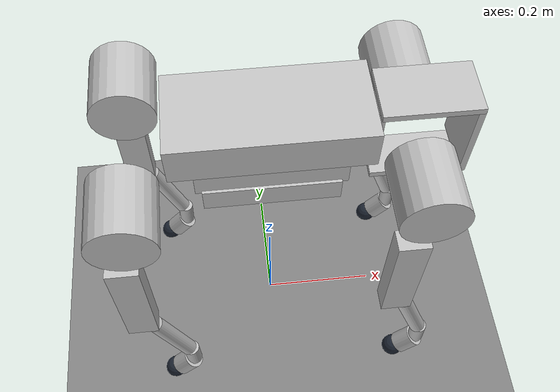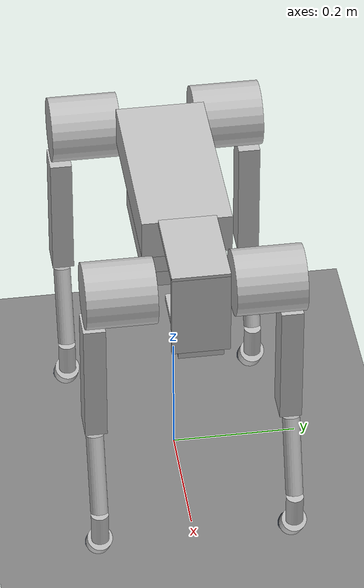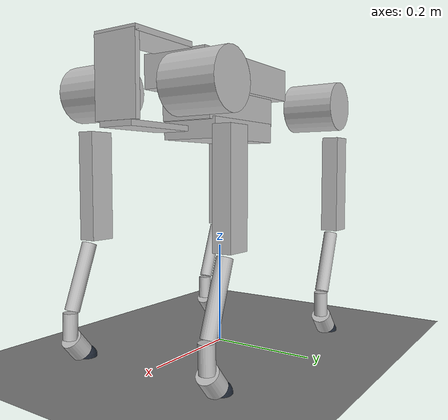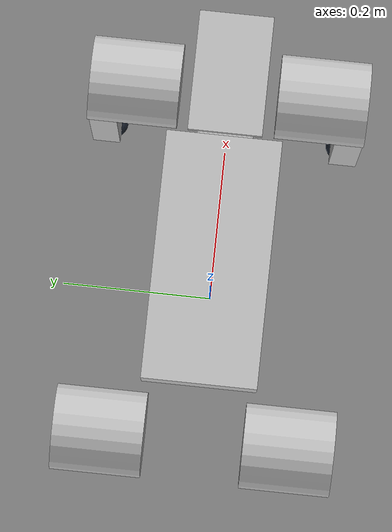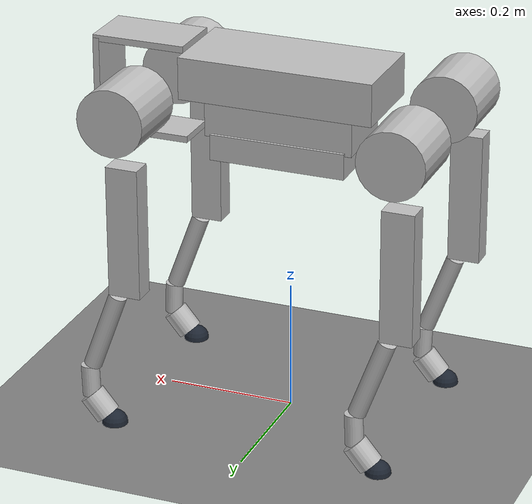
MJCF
<mujoco model="robot">
  <option iterations="50" timestep="0.001" solver="PGS" gravity="0 0 -9.81" />
  <compiler angle="radian" eulerseq="zyx" autolimits="true" />

  <default>
    <joint limited="true" damping="0.01" armature="0.01" frictionloss="0.01" />
    <geom condim="4" contype="1" conaffinity="15" friction="0.9 0.2 0.2" solref="0.001 2" />
    <motor ctrllimited="true" />
    <equality solref="0.001 2" />
  </default>

  <worldbody>
    <light directional="true" diffuse="0.4 0.4 0.4" specular="0.1 0.1 0.1" pos="0 0 5.0" dir="0 0 -1" castshadow="false" />
    <light directional="true" diffuse="0.6 0.6 0.6" specular="0.2 0.2 0.2" pos="0 0 4" dir="0 0 -1" />
    <geom name="ground" type="plane" pos="0 0 0" size="100 100 0.001" quat="1 0 0 0" condim="3" conaffinity="15" />
    <camera name="fixed" pos="0 -3.0 1.05858" xyaxes="1 0 0 0 0 1" />
    <camera name="track" mode="trackcom" pos="0 -3.0 1.05858" xyaxes="1 0 0 0 0 1" />

    <body name="root" pos="0 0 0.55858" quat="1 0 0 0">
      <freejoint name="root" />
      <site name="imu" size="0.01" pos="0 0 0" />

      <geom type="box" size="0.15 0.07 0.0325" pos="0 0 -0.02" rgba="0.75 0.75 0.75 1" contype="1" conaffinity="0" group="1" />
      <geom type="box" size="0.15 0.07 0.0325" pos="0 0 -0.02" rgba="0.75 0.75 0.75 1" />
      <geom type="box" size="0.115 0.055 0.03" pos="0 0 -0.08" rgba="0.75 0.75 0.75 1" contype="1" conaffinity="0" group="1" />
      <geom type="box" size="0.115 0.055 0.03" pos="0 0 -0.08" rgba="0.75 0.75 0.75 1" />
      <geom type="box" size="0.105 0.06 0.02" pos="0 0 -0.125" rgba="0.75 0.75 0.75 1" contype="1" conaffinity="0" group="1" />
      <geom type="box" size="0.105 0.06 0.02" pos="0 0 -0.125" rgba="0.75 0.75 0.75 1" />
      <geom type="box" size="0.0725 0.035 0.005" pos="0.225 0 -0.13" rgba="0.75 0.75 0.75 1" contype="1" conaffinity="0" group="1" />
      <geom type="box" size="0.0725 0.035 0.005" pos="0.225 0 -0.13" rgba="0.75 0.75 0.75 1" />
      <geom type="box" size="0.0725 0.045 0.005" pos="0.225 0 0.015" rgba="0.75 0.75 0.75 1" contype="1" conaffinity="0" group="1" />
      <geom type="box" size="0.0725 0.045 0.005" pos="0.225 0 0.015" rgba="0.75 0.75 0.75 1" />
      <geom type="box" size="0.005 0.045 0.07" pos="0.293 0 -0.055" rgba="0.75 0.75 0.75 1" contype="1" conaffinity="0" group="1" />
      <geom type="box" size="0.005 0.045 0.07" pos="0.293 0 -0.055" rgba="0.75 0.75 0.75 1" />

      <body name="FL_hip" pos="0.1566 0.060001 -0.06425">
        <inertial pos="0.05138 0.014784 5.66e-05" quat="0.695638 -0.0108304 -0.0108744 0.718229" mass="0.60559" diaginertia="0.000649581 0.000373949 0.000341469" />
        <joint name="FL_hip_joint" range="-0.5 0.5" actuatorfrcrange="-20 20" axis="1 0 0" />
        <geom type="cylinder" size="0.052 0.055" pos="0.058 0.055 0" quat="0.707107 0.707107 0 0" rgba="0.75 0.75 0.75 1" contype="1" conaffinity="0" group="1" />
        <geom type="cylinder" size="0.052 0.055" pos="0.058 0.055 0" quat="0.707107 0.707107 0 0" rgba="0.75 0.75 0.75 1" />
        <body name="FL_thigh" pos="0.056 0.0336 0" quat="0.707105 0 0 0.707108">
          <inertial pos="0.041449 0.004453 -0.021946" quat="0.999996 0.00289628 7.46384e-05 -1.0448e-06" mass="0.91168" diaginertia="0.0018577 0.00139833 0.00051787" />
          <joint name="FL_thigh_joint" range="-1.2 1.6" actuatorfrcrange="-20 20" axis="1 0 0" />
          <geom type="box" size="0.0175 0.025 0.1025" pos="0.06 0.015 -0.17" rgba="0.75 0.75 0.75 1" contype="1" conaffinity="0" group="1" />
          <geom type="box" size="0.0175 0.025 0.1025" pos="0.06 0.015 -0.17" rgba="0.75 0.75 0.75 1" />
          <body name="FL_calf" pos="0.0618 0 -0.25">
            <inertial pos="5.50549e-05 -0.0216127 -0.175868" quat="0.998778 -0.0494097 0.000212935 0.000822721" mass="0.34861" diaginertia="0.00161079 0.0015434 9.93857e-05" />
            <joint name="FL_calf_joint" range="-2.5 -0.85" actuatorfrcrange="-20 20" axis="1 0 0" />
            <geom type="cylinder" size="0.014 0.065" pos="0 -0.025 -0.09" quat="0.984304 -0.176483 0 0" rgba="0.75 0.75 0.75 1" contype="1" conaffinity="0" group="1" />
            <geom type="cylinder" size="0.014 0.065" pos="0 -0.025 -0.09" quat="0.984304 -0.176483 0 0" rgba="0.75 0.75 0.75 1" />
            <geom type="cylinder" size="0.014 0.025" pos="0 -0.052 -0.178" quat="0.999851 0.0172779 0 0" rgba="0.75 0.75 0.75 1" contype="1" conaffinity="0" group="1" />
            <geom type="cylinder" size="0.014 0.025" pos="0 -0.052 -0.178" quat="0.999851 0.0172779 0 0" rgba="0.75 0.75 0.75 1" />
            <geom type="cylinder" size="0.02 0.02" pos="0 -0.038 -0.218" quat="0.939693 0.34202 0 0" rgba="0.75 0.75 0.75 1" contype="1" conaffinity="0" group="1" />
            <geom type="cylinder" size="0.02 0.02" pos="0 -0.038 -0.218" quat="0.939693 0.34202 0 0" rgba="0.75 0.75 0.75 1" />
            <geom type="sphere" size="0.02" pos="0 -0.013803 -0.24433" rgba="0.117651 0.149024 0.200004 1" contype="1" conaffinity="0" group="1" />
            <geom type="sphere" size="0.02" pos="0 -0.013803 -0.24433" rgba="0.117651 0.149024 0.200004 1" />
          </body>
        </body>
      </body>

      <body name="FR_hip" pos="0.1566 -0.059999 -0.06425">
        <inertial pos="0.05138 -0.014784 -5.66e-05" quat="0.718229 0.0108744 0.0108304 0.695638" mass="0.60559" diaginertia="0.000649581 0.000373949 0.000341469" />
        <joint name="FR_hip_joint" range="-0.5 0.5" actuatorfrcrange="-20 20" axis="1 0 0" />
        <geom type="cylinder" size="0.052 0.055" pos="0.058 -0.055 0" quat="0.707107 0.707107 0 0" rgba="0.75 0.75 0.75 1" contype="1" conaffinity="0" group="1" />
        <geom type="cylinder" size="0.052 0.055" pos="0.058 -0.055 0" quat="0.707107 0.707107 0 0" rgba="0.75 0.75 0.75 1" />
        <body name="FR_thigh" pos="0.056 -0.0336 0" quat="0.707105 0 0 -0.707108">
          <inertial pos="0.04152 -0.0043781 -0.022024" quat="0.999998 -0.00175756 7.45387e-05 -0.000108394" mass="0.91491" diaginertia="0.0018577 0.00139911 0.000517189" />
          <joint name="FR_thigh_joint" range="-1.6 1.2" actuatorfrcrange="-20 20" axis="1 0 0" />
          <geom type="box" size="0.0175 0.025 0.1025" pos="0.06 -0.015 -0.17" rgba="0.75 0.75 0.75 1" contype="1" conaffinity="0" group="1" />
          <geom type="box" size="0.0175 0.025 0.1025" pos="0.06 -0.015 -0.17" rgba="0.75 0.75 0.75 1" />
          <body name="FR_calf" pos="0.0618 0 -0.25">
            <inertial pos="-5.50549e-05 0.0216127 -0.175868" quat="0.998778 0.0494097 -0.000212935 0.000822721" mass="0.34861" diaginertia="0.00161079 0.0015434 9.93857e-05" />
            <joint name="FR_calf_joint" range="0.85 2.5" actuatorfrcrange="-20 20" axis="1 0 0" />
            <geom type="cylinder" size="0.014 0.065" pos="0 0.025 -0.09" quat="0.984304 0.176483 0 0" rgba="0.75 0.75 0.75 1" contype="1" conaffinity="0" group="1" />
            <geom type="cylinder" size="0.014 0.065" pos="0 0.025 -0.09" quat="0.984304 0.176483 0 0" rgba="0.75 0.75 0.75 1" />
            <geom type="cylinder" size="0.014 0.025" pos="0 0.052 -0.178" quat="0.999851 0.0172779 0 0" rgba="0.75 0.75 0.75 1" contype="1" conaffinity="0" group="1" />
            <geom type="cylinder" size="0.014 0.025" pos="0 0.052 -0.178" quat="0.999851 0.0172779 0 0" rgba="0.75 0.75 0.75 1" />
            <geom type="cylinder" size="0.02 0.02" pos="0 0.038 -0.218" quat="0.939693 -0.34202 0 0" rgba="0.75 0.75 0.75 1" contype="1" conaffinity="0" group="1" />
            <geom type="cylinder" size="0.02 0.02" pos="0 0.038 -0.218" quat="0.939693 -0.34202 0 0" rgba="0.75 0.75 0.75 1" />
            <geom type="sphere" size="0.02" pos="0 0.013803 -0.24433" rgba="0.117651 0.149024 0.200004 1" contype="1" conaffinity="0" group="1" />
            <geom type="sphere" size="0.02" pos="0 0.013803 -0.24433" rgba="0.117651 0.149024 0.200004 1" />
          </body>
        </body>
      </body>

      <body name="RR_hip" pos="-0.1566 -0.059999 -0.06425" quat="-3.67321e-06 0 0 -1">
        <inertial pos="0.05138 0.014784 5.66e-05" quat="0.695638 -0.0108304 -0.0108744 0.718229" mass="0.60559" diaginertia="0.000649581 0.000373949 0.000341469" />
        <joint name="RR_hip_joint" range="-0.5 0.5" actuatorfrcrange="-20 20" axis="1 0 0" />
        <geom type="cylinder" size="0.052 0.055" pos="0.058 0.055 0" quat="0.707107 0.707107 0 0" rgba="0.75 0.75 0.75 1" contype="1" conaffinity="0" group="1" />
        <geom type="cylinder" size="0.052 0.055" pos="0.058 0.055 0" quat="0.707107 0.707107 0 0" rgba="0.75 0.75 0.75 1" />
        <body name="RR_thigh" pos="0.056 0.0336 0" quat="0.707105 0 0 0.707108">
          <inertial pos="0.04152 -0.0043784 -0.022024" quat="0.999998 -0.00175756 7.45387e-05 -0.000108394" mass="0.91491" diaginertia="0.0018577 0.00139911 0.000517189" />
          <joint name="RR_thigh_joint" range="-1.6 1.2" actuatorfrcrange="-20 20" axis="1 0 0" />
          <geom type="box" size="0.0175 0.025 0.1025" pos="0.06 -0.015 -0.17" rgba="0.75 0.75 0.75 1" contype="1" conaffinity="0" group="1" />
          <geom type="box" size="0.0175 0.025 0.1025" pos="0.06 -0.015 -0.17" rgba="0.75 0.75 0.75 1" />
          <body name="RR_calf" pos="0.0618 0 -0.25">
            <inertial pos="-5.50549e-05 0.0216127 -0.175868" quat="0.998778 0.0494097 -0.000212935 0.000822721" mass="0.34861" diaginertia="0.00161079 0.0015434 9.93857e-05" />
            <joint name="RR_calf_joint" range="0.85 2.5" actuatorfrcrange="-20 20" axis="1 0 0" />
            <geom type="cylinder" size="0.014 0.065" pos="0 0.025 -0.09" quat="0.984304 0.176483 0 0" rgba="0.75 0.75 0.75 1" contype="1" conaffinity="0" group="1" />
            <geom type="cylinder" size="0.014 0.065" pos="0 0.025 -0.09" quat="0.984304 0.176483 0 0" rgba="0.75 0.75 0.75 1" />
            <geom type="cylinder" size="0.014 0.025" pos="0 0.052 -0.178" quat="0.999851 0.0172779 0 0" rgba="0.75 0.75 0.75 1" contype="1" conaffinity="0" group="1" />
            <geom type="cylinder" size="0.014 0.025" pos="0 0.052 -0.178" quat="0.999851 0.0172779 0 0" rgba="0.75 0.75 0.75 1" />
            <geom type="cylinder" size="0.02 0.02" pos="0 0.038 -0.218" quat="0.939693 -0.34202 0 0" rgba="0.75 0.75 0.75 1" contype="1" conaffinity="0" group="1" />
            <geom type="cylinder" size="0.02 0.02" pos="0 0.038 -0.218" quat="0.939693 -0.34202 0 0" rgba="0.75 0.75 0.75 1" />
            <geom type="sphere" size="0.02" pos="0 0.013803 -0.24433" rgba="0.117651 0.149024 0.200004 1" contype="1" conaffinity="0" group="1" />
            <geom type="sphere" size="0.02" pos="0 0.013803 -0.24433" rgba="0.117651 0.149024 0.200004 1" />
          </body>
        </body>
      </body>

      <body name="RL_hip" pos="-0.1566 0.060001 -0.06425" quat="-3.67321e-06 0 0 -1">
        <inertial pos="0.05138 -0.014784 -5.66e-05" quat="0.718229 0.0108744 0.0108304 0.695638" mass="0.60559" diaginertia="0.000649581 0.000373949 0.000341469" />
        <joint name="RL_hip_joint" range="-0.5 0.5" actuatorfrcrange="-20 20" axis="1 0 0" />
        <geom type="cylinder" size="0.052 0.055" pos="0.058 -0.055 0" quat="0.707107 0.707107 0 0" rgba="0.75 0.75 0.75 1" contype="1" conaffinity="0" group="1" />
        <geom type="cylinder" size="0.052 0.055" pos="0.058 -0.055 0" quat="0.707107 0.707107 0 0" rgba="0.75 0.75 0.75 1" />
        <body name="RL_thigh" pos="0.056 -0.0336 0" quat="0.707105 0 0 -0.707108">
          <inertial pos="0.041449 0.0044527 -0.021947" quat="0.999996 0.00289628 7.46384e-05 -1.0448e-06" mass="0.91168" diaginertia="0.0018577 0.00139833 0.00051787" />
          <joint name="RL_thigh_joint" range="-1.2 1.6" actuatorfrcrange="-20 20" axis="1 0 0" />
          <geom type="box" size="0.0175 0.025 0.1025" pos="0.06 0.015 -0.17" rgba="0.75 0.75 0.75 1" contype="1" conaffinity="0" group="1" />
          <geom type="box" size="0.0175 0.025 0.1025" pos="0.06 0.015 -0.17" rgba="0.75 0.75 0.75 1" />
          <body name="RL_calf" pos="0.0618 0 -0.25">
            <inertial pos="5.50549e-05 -0.0216127 -0.175868" quat="0.998778 -0.0494097 0.000212935 0.000822721" mass="0.34861" diaginertia="0.00161079 0.0015434 9.93857e-05" />
            <joint name="RL_calf_joint" range="-2.5 -0.85" actuatorfrcrange="-20 20" axis="1 0 0" />
            <geom type="cylinder" size="0.014 0.065" pos="0 -0.025 -0.09" quat="0.984304 -0.176483 0 0" rgba="0.75 0.75 0.75 1" contype="1" conaffinity="0" group="1" />
            <geom type="cylinder" size="0.014 0.065" pos="0 -0.025 -0.09" quat="0.984304 -0.176483 0 0" rgba="0.75 0.75 0.75 1" />
            <geom type="cylinder" size="0.014 0.025" pos="0 -0.052 -0.178" quat="0.999851 0.0172779 0 0" rgba="0.75 0.75 0.75 1" contype="1" conaffinity="0" group="1" />
            <geom type="cylinder" size="0.014 0.025" pos="0 -0.052 -0.178" quat="0.999851 0.0172779 0 0" rgba="0.75 0.75 0.75 1" />
            <geom type="cylinder" size="0.02 0.02" pos="0 -0.038 -0.218" quat="0.939693 0.34202 0 0" rgba="0.75 0.75 0.75 1" contype="1" conaffinity="0" group="1" />
            <geom type="cylinder" size="0.02 0.02" pos="0 -0.038 -0.218" quat="0.939693 0.34202 0 0" rgba="0.75 0.75 0.75 1" />
            <geom type="sphere" size="0.02" pos="0 -0.013803 -0.24433" rgba="0.117651 0.149024 0.200004 1" contype="1" conaffinity="0" group="1" />
            <geom type="sphere" size="0.02" pos="0 -0.013803 -0.24433" rgba="0.117651 0.149024 0.200004 1" />
          </body>
        </body>
      </body>
    </body>
  </worldbody>

  <actuator>
    <motor name="FL_hip_joint" joint="FL_hip_joint" ctrllimited="true" ctrlrange="-20 20" gear="1" />
    <motor name="FL_thigh_joint" joint="FL_thigh_joint" ctrllimited="true" ctrlrange="-20 20" gear="1" />
    <motor name="FL_calf_joint" joint="FL_calf_joint" ctrllimited="true" ctrlrange="-20 20" gear="1" />
    <motor name="FR_hip_joint" joint="FR_hip_joint" ctrllimited="true" ctrlrange="-20 20" gear="1" />
    <motor name="FR_thigh_joint" joint="FR_thigh_joint" ctrllimited="true" ctrlrange="-20 20" gear="1" />
    <motor name="FR_calf_joint" joint="FR_calf_joint" ctrllimited="true" ctrlrange="-20 20" gear="1" />
    <motor name="RR_hip_joint" joint="RR_hip_joint" ctrllimited="true" ctrlrange="-20 20" gear="1" />
    <motor name="RR_thigh_joint" joint="RR_thigh_joint" ctrllimited="true" ctrlrange="-20 20" gear="1" />
    <motor name="RR_calf_joint" joint="RR_calf_joint" ctrllimited="true" ctrlrange="-20 20" gear="1" />
    <motor name="RL_hip_joint" joint="RL_hip_joint" ctrllimited="true" ctrlrange="-20 20" gear="1" />
    <motor name="RL_thigh_joint" joint="RL_thigh_joint" ctrllimited="true" ctrlrange="-20 20" gear="1" />
    <motor name="RL_calf_joint" joint="RL_calf_joint" ctrllimited="true" ctrlrange="-20 20" gear="1" />
  </actuator>
</mujoco>
